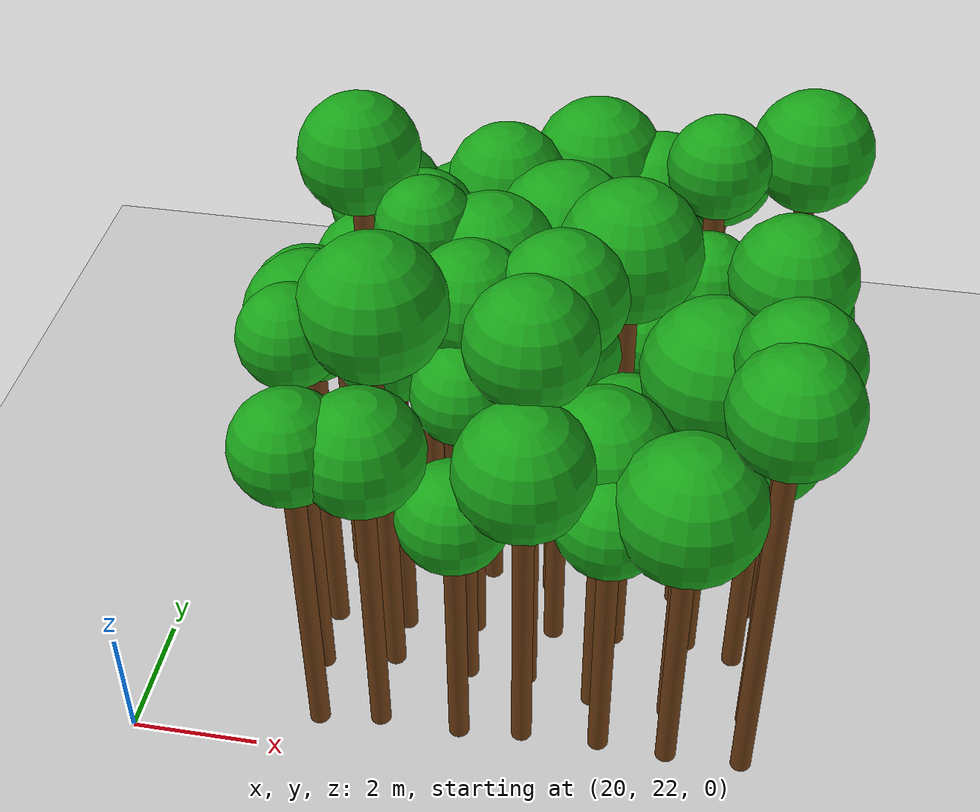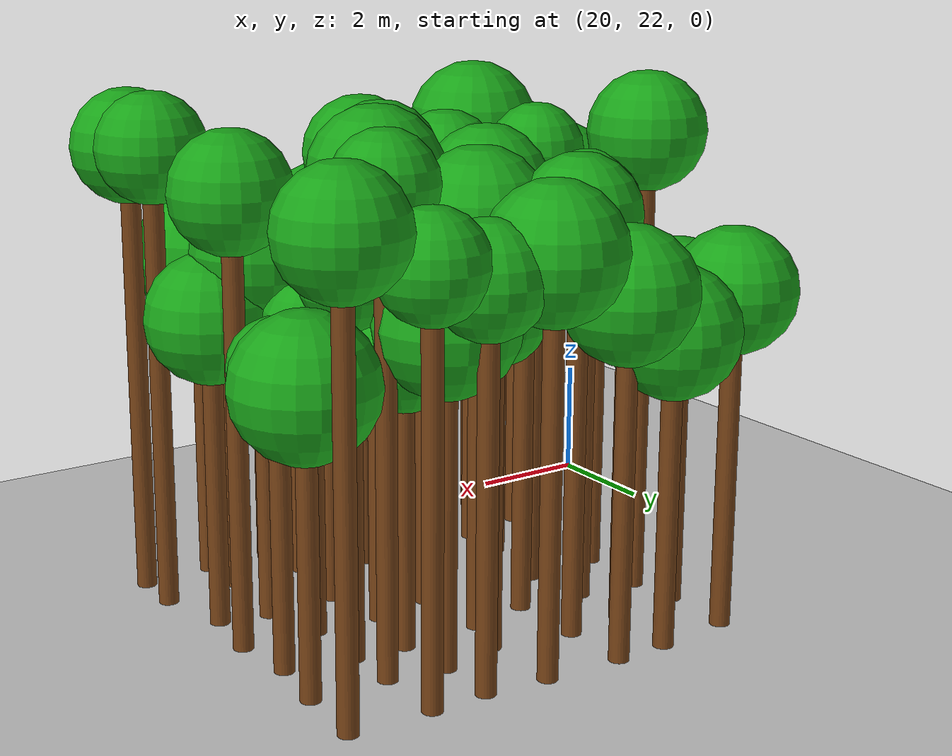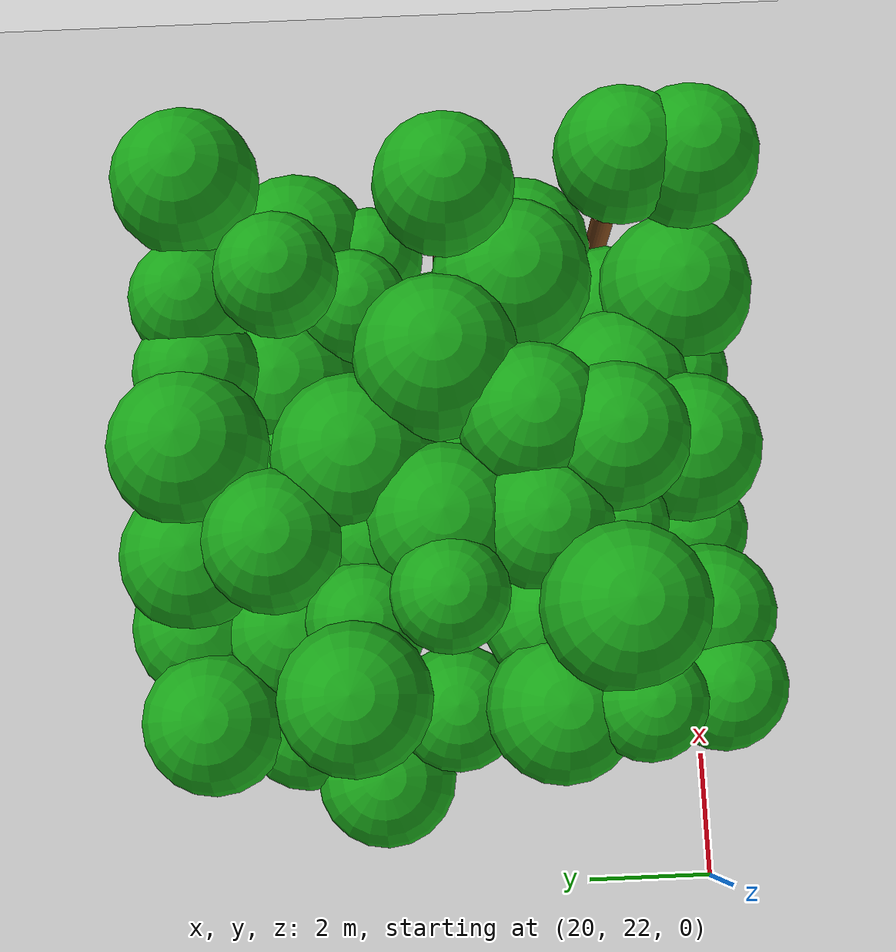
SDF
<sdf version="1.6">
 <world name="forest_world">
  <include><uri>model://sun</uri></include>
  <include><uri>model://ground_plane</uri></include>
  <model name="tree_2614_trunk">
   <static>true</static>
   <pose>21.87 27.13 2.11 0 0 0</pose>
   <link name="link">
    <collision name="collision">
     <geometry><cylinder><radius>0.16</radius><length>4.22</length></cylinder></geometry>
    </collision>
    <visual name="visual">
     <geometry><cylinder><radius>0.16</radius><length>4.22</length></cylinder></geometry>
     <material><ambient>0.35 0.20 0.05 1</ambient><diffuse>0.45 0.25 0.08 1</diffuse></material>
    </visual>
   </link>
  </model>
  <model name="tree_2614_leaf">
   <static>true</static>
   <pose>21.87 27.13 4.79 0 0 0</pose>
   <link name="link">
    <collision name="collision"><geometry><sphere><radius>0.94</radius></sphere></geometry></collision>
    <visual name="visual">
     <geometry><sphere><radius>0.94</radius></sphere></geometry>
     <material><ambient>0.05 0.45 0.05 1</ambient><diffuse>0.10 0.65 0.10 1</diffuse></material>
    </visual>
   </link>
  </model>
  <model name="tree_2665_trunk">
   <static>true</static>
   <pose>22.87 22.68 2.68 0 0 0</pose>
   <link name="link">
    <collision name="collision">
     <geometry><cylinder><radius>0.16</radius><length>5.36</length></cylinder></geometry>
    </collision>
    <visual name="visual">
     <geometry><cylinder><radius>0.16</radius><length>5.36</length></cylinder></geometry>
     <material><ambient>0.35 0.20 0.05 1</ambient><diffuse>0.45 0.25 0.08 1</diffuse></material>
    </visual>
   </link>
  </model>
  <model name="tree_2665_leaf">
   <static>true</static>
   <pose>22.87 22.68 5.87 0 0 0</pose>
   <link name="link">
    <collision name="collision"><geometry><sphere><radius>0.85</radius></sphere></geometry></collision>
    <visual name="visual">
     <geometry><sphere><radius>0.85</radius></sphere></geometry>
     <material><ambient>0.05 0.45 0.05 1</ambient><diffuse>0.10 0.65 0.10 1</diffuse></material>
    </visual>
   </link>
  </model>
  <model name="tree_2666_trunk">
   <static>true</static>
   <pose>22.67 23.80 3.22 0 0 0</pose>
   <link name="link">
    <collision name="collision">
     <geometry><cylinder><radius>0.16</radius><length>6.43</length></cylinder></geometry>
    </collision>
    <visual name="visual">
     <geometry><cylinder><radius>0.16</radius><length>6.43</length></cylinder></geometry>
     <material><ambient>0.35 0.20 0.05 1</ambient><diffuse>0.45 0.25 0.08 1</diffuse></material>
    </visual>
   </link>
  </model>
  <model name="tree_2666_leaf">
   <static>true</static>
   <pose>22.67 23.80 6.88 0 0 0</pose>
   <link name="link">
    <collision name="collision"><geometry><sphere><radius>0.75</radius></sphere></geometry></collision>
    <visual name="visual">
     <geometry><sphere><radius>0.75</radius></sphere></geometry>
     <material><ambient>0.05 0.45 0.05 1</ambient><diffuse>0.10 0.65 0.10 1</diffuse></material>
    </visual>
   </link>
  </model>
  <model name="tree_2667_trunk">
   <static>true</static>
   <pose>22.65 24.82 2.93 0 0 0</pose>
   <link name="link">
    <collision name="collision">
     <geometry><cylinder><radius>0.16</radius><length>5.86</length></cylinder></geometry>
    </collision>
    <visual name="visual">
     <geometry><cylinder><radius>0.16</radius><length>5.86</length></cylinder></geometry>
     <material><ambient>0.35 0.20 0.05 1</ambient><diffuse>0.45 0.25 0.08 1</diffuse></material>
    </visual>
   </link>
  </model>
  <model name="tree_2667_leaf">
   <static>true</static>
   <pose>22.65 24.82 6.44 0 0 0</pose>
   <link name="link">
    <collision name="collision"><geometry><sphere><radius>0.97</radius></sphere></geometry></collision>
    <visual name="visual">
     <geometry><sphere><radius>0.97</radius></sphere></geometry>
     <material><ambient>0.05 0.45 0.05 1</ambient><diffuse>0.10 0.65 0.10 1</diffuse></material>
    </visual>
   </link>
  </model>
  <model name="tree_2668_trunk">
   <static>true</static>
   <pose>22.74 26.13 2.57 0 0 0</pose>
   <link name="link">
    <collision name="collision">
     <geometry><cylinder><radius>0.16</radius><length>5.15</length></cylinder></geometry>
    </collision>
    <visual name="visual">
     <geometry><cylinder><radius>0.16</radius><length>5.15</length></cylinder></geometry>
     <material><ambient>0.35 0.20 0.05 1</ambient><diffuse>0.45 0.25 0.08 1</diffuse></material>
    </visual>
   </link>
  </model>
  <model name="tree_2668_leaf">
   <static>true</static>
   <pose>22.74 26.13 5.65 0 0 0</pose>
   <link name="link">
    <collision name="collision"><geometry><sphere><radius>0.84</radius></sphere></geometry></collision>
    <visual name="visual">
     <geometry><sphere><radius>0.84</radius></sphere></geometry>
     <material><ambient>0.05 0.45 0.05 1</ambient><diffuse>0.10 0.65 0.10 1</diffuse></material>
    </visual>
   </link>
  </model>
  <model name="tree_2669_trunk">
   <static>true</static>
   <pose>22.82 27.37 3.50 0 0 0</pose>
   <link name="link">
    <collision name="collision">
     <geometry><cylinder><radius>0.16</radius><length>6.99</length></cylinder></geometry>
    </collision>
    <visual name="visual">
     <geometry><cylinder><radius>0.16</radius><length>6.99</length></cylinder></geometry>
     <material><ambient>0.35 0.20 0.05 1</ambient><diffuse>0.45 0.25 0.08 1</diffuse></material>
    </visual>
   </link>
  </model>
  <model name="tree_2669_leaf">
   <static>true</static>
   <pose>22.82 27.37 7.56 0 0 0</pose>
   <link name="link">
    <collision name="collision"><geometry><sphere><radius>0.94</radius></sphere></geometry></collision>
    <visual name="visual">
     <geometry><sphere><radius>0.94</radius></sphere></geometry>
     <material><ambient>0.05 0.45 0.05 1</ambient><diffuse>0.10 0.65 0.10 1</diffuse></material>
    </visual>
   </link>
  </model>
  <model name="tree_2670_trunk">
   <static>true</static>
   <pose>22.68 28.16 2.15 0 0 0</pose>
   <link name="link">
    <collision name="collision">
     <geometry><cylinder><radius>0.16</radius><length>4.31</length></cylinder></geometry>
    </collision>
    <visual name="visual">
     <geometry><cylinder><radius>0.16</radius><length>4.31</length></cylinder></geometry>
     <material><ambient>0.35 0.20 0.05 1</ambient><diffuse>0.45 0.25 0.08 1</diffuse></material>
    </visual>
   </link>
  </model>
  <model name="tree_2670_leaf">
   <static>true</static>
   <pose>22.68 28.16 4.87 0 0 0</pose>
   <link name="link">
    <collision name="collision"><geometry><sphere><radius>0.94</radius></sphere></geometry></collision>
    <visual name="visual">
     <geometry><sphere><radius>0.94</radius></sphere></geometry>
     <material><ambient>0.05 0.45 0.05 1</ambient><diffuse>0.10 0.65 0.10 1</diffuse></material>
    </visual>
   </link>
  </model>
  <model name="tree_2671_trunk">
   <static>true</static>
   <pose>22.70 29.35 2.40 0 0 0</pose>
   <link name="link">
    <collision name="collision">
     <geometry><cylinder><radius>0.16</radius><length>4.81</length></cylinder></geometry>
    </collision>
    <visual name="visual">
     <geometry><cylinder><radius>0.16</radius><length>4.81</length></cylinder></geometry>
     <material><ambient>0.35 0.20 0.05 1</ambient><diffuse>0.45 0.25 0.08 1</diffuse></material>
    </visual>
   </link>
  </model>
  <model name="tree_2671_leaf">
   <static>true</static>
   <pose>22.70 29.35 5.40 0 0 0</pose>
   <link name="link">
    <collision name="collision"><geometry><sphere><radius>0.98</radius></sphere></geometry></collision>
    <visual name="visual">
     <geometry><sphere><radius>0.98</radius></sphere></geometry>
     <material><ambient>0.05 0.45 0.05 1</ambient><diffuse>0.10 0.65 0.10 1</diffuse></material>
    </visual>
   </link>
  </model>
  <model name="tree_2720_trunk">
   <static>true</static>
   <pose>23.83 22.82 2.62 0 0 0</pose>
   <link name="link">
    <collision name="collision">
     <geometry><cylinder><radius>0.16</radius><length>5.24</length></cylinder></geometry>
    </collision>
    <visual name="visual">
     <geometry><cylinder><radius>0.16</radius><length>5.24</length></cylinder></geometry>
     <material><ambient>0.35 0.20 0.05 1</ambient><diffuse>0.45 0.25 0.08 1</diffuse></material>
    </visual>
   </link>
  </model>
  <model name="tree_2720_leaf">
   <static>true</static>
   <pose>23.83 22.82 5.79 0 0 0</pose>
   <link name="link">
    <collision name="collision"><geometry><sphere><radius>0.93</radius></sphere></geometry></collision>
    <visual name="visual">
     <geometry><sphere><radius>0.93</radius></sphere></geometry>
     <material><ambient>0.05 0.45 0.05 1</ambient><diffuse>0.10 0.65 0.10 1</diffuse></material>
    </visual>
   </link>
  </model>
  <model name="tree_2721_trunk">
   <static>true</static>
   <pose>23.80 24.06 3.35 0 0 0</pose>
   <link name="link">
    <collision name="collision">
     <geometry><cylinder><radius>0.16</radius><length>6.70</length></cylinder></geometry>
    </collision>
    <visual name="visual">
     <geometry><cylinder><radius>0.16</radius><length>6.70</length></cylinder></geometry>
     <material><ambient>0.35 0.20 0.05 1</ambient><diffuse>0.45 0.25 0.08 1</diffuse></material>
    </visual>
   </link>
  </model>
  <model name="tree_2721_leaf">
   <static>true</static>
   <pose>23.80 24.06 7.33 0 0 0</pose>
   <link name="link">
    <collision name="collision"><geometry><sphere><radius>1.06</radius></sphere></geometry></collision>
    <visual name="visual">
     <geometry><sphere><radius>1.06</radius></sphere></geometry>
     <material><ambient>0.05 0.45 0.05 1</ambient><diffuse>0.10 0.65 0.10 1</diffuse></material>
    </visual>
   </link>
  </model>
  <model name="tree_2722_trunk">
   <static>true</static>
   <pose>23.83 24.85 2.79 0 0 0</pose>
   <link name="link">
    <collision name="collision">
     <geometry><cylinder><radius>0.16</radius><length>5.59</length></cylinder></geometry>
    </collision>
    <visual name="visual">
     <geometry><cylinder><radius>0.16</radius><length>5.59</length></cylinder></geometry>
     <material><ambient>0.35 0.20 0.05 1</ambient><diffuse>0.45 0.25 0.08 1</diffuse></material>
    </visual>
   </link>
  </model>
  <model name="tree_2722_leaf">
   <static>true</static>
   <pose>23.83 24.85 6.14 0 0 0</pose>
   <link name="link">
    <collision name="collision"><geometry><sphere><radius>0.93</radius></sphere></geometry></collision>
    <visual name="visual">
     <geometry><sphere><radius>0.93</radius></sphere></geometry>
     <material><ambient>0.05 0.45 0.05 1</ambient><diffuse>0.10 0.65 0.10 1</diffuse></material>
    </visual>
   </link>
  </model>
  <model name="tree_2723_trunk">
   <static>true</static>
   <pose>24.07 26.18 3.38 0 0 0</pose>
   <link name="link">
    <collision name="collision">
     <geometry><cylinder><radius>0.16</radius><length>6.76</length></cylinder></geometry>
    </collision>
    <visual name="visual">
     <geometry><cylinder><radius>0.16</radius><length>6.76</length></cylinder></geometry>
     <material><ambient>0.35 0.20 0.05 1</ambient><diffuse>0.45 0.25 0.08 1</diffuse></material>
    </visual>
   </link>
  </model>
  <model name="tree_2723_leaf">
   <static>true</static>
   <pose>24.07 26.18 7.21 0 0 0</pose>
   <link name="link">
    <collision name="collision"><geometry><sphere><radius>0.75</radius></sphere></geometry></collision>
    <visual name="visual">
     <geometry><sphere><radius>0.75</radius></sphere></geometry>
     <material><ambient>0.05 0.45 0.05 1</ambient><diffuse>0.10 0.65 0.10 1</diffuse></material>
    </visual>
   </link>
  </model>
  <model name="tree_2724_trunk">
   <static>true</static>
   <pose>23.84 27.24 3.04 0 0 0</pose>
   <link name="link">
    <collision name="collision">
     <geometry><cylinder><radius>0.16</radius><length>6.08</length></cylinder></geometry>
    </collision>
    <visual name="visual">
     <geometry><cylinder><radius>0.16</radius><length>6.08</length></cylinder></geometry>
     <material><ambient>0.35 0.20 0.05 1</ambient><diffuse>0.45 0.25 0.08 1</diffuse></material>
    </visual>
   </link>
  </model>
  <model name="tree_2724_leaf">
   <static>true</static>
   <pose>23.84 27.24 6.56 0 0 0</pose>
   <link name="link">
    <collision name="collision"><geometry><sphere><radius>0.79</radius></sphere></geometry></collision>
    <visual name="visual">
     <geometry><sphere><radius>0.79</radius></sphere></geometry>
     <material><ambient>0.05 0.45 0.05 1</ambient><diffuse>0.10 0.65 0.10 1</diffuse></material>
    </visual>
   </link>
  </model>
  <model name="tree_2725_trunk">
   <static>true</static>
   <pose>23.87 28.28 2.33 0 0 0</pose>
   <link name="link">
    <collision name="collision">
     <geometry><cylinder><radius>0.16</radius><length>4.66</length></cylinder></geometry>
    </collision>
    <visual name="visual">
     <geometry><cylinder><radius>0.16</radius><length>4.66</length></cylinder></geometry>
     <material><ambient>0.35 0.20 0.05 1</ambient><diffuse>0.45 0.25 0.08 1</diffuse></material>
    </visual>
   </link>
  </model>
  <model name="tree_2725_leaf">
   <static>true</static>
   <pose>23.87 28.28 5.26 0 0 0</pose>
   <link name="link">
    <collision name="collision"><geometry><sphere><radius>1.00</radius></sphere></geometry></collision>
    <visual name="visual">
     <geometry><sphere><radius>1.00</radius></sphere></geometry>
     <material><ambient>0.05 0.45 0.05 1</ambient><diffuse>0.10 0.65 0.10 1</diffuse></material>
    </visual>
   </link>
  </model>
  <model name="tree_2726_trunk">
   <static>true</static>
   <pose>24.00 29.51 2.19 0 0 0</pose>
   <link name="link">
    <collision name="collision">
     <geometry><cylinder><radius>0.16</radius><length>4.37</length></cylinder></geometry>
    </collision>
    <visual name="visual">
     <geometry><cylinder><radius>0.16</radius><length>4.37</length></cylinder></geometry>
     <material><ambient>0.35 0.20 0.05 1</ambient><diffuse>0.45 0.25 0.08 1</diffuse></material>
    </visual>
   </link>
  </model>
  <model name="tree_2726_leaf">
   <static>true</static>
   <pose>24.00 29.51 4.98 0 0 0</pose>
   <link name="link">
    <collision name="collision"><geometry><sphere><radius>1.02</radius></sphere></geometry></collision>
    <visual name="visual">
     <geometry><sphere><radius>1.02</radius></sphere></geometry>
     <material><ambient>0.05 0.45 0.05 1</ambient><diffuse>0.10 0.65 0.10 1</diffuse></material>
    </visual>
   </link>
  </model>
  <model name="tree_2775_trunk">
   <static>true</static>
   <pose>25.10 22.80 2.14 0 0 0</pose>
   <link name="link">
    <collision name="collision">
     <geometry><cylinder><radius>0.16</radius><length>4.29</length></cylinder></geometry>
    </collision>
    <visual name="visual">
     <geometry><cylinder><radius>0.16</radius><length>4.29</length></cylinder></geometry>
     <material><ambient>0.35 0.20 0.05 1</ambient><diffuse>0.45 0.25 0.08 1</diffuse></material>
    </visual>
   </link>
  </model>
  <model name="tree_2775_leaf">
   <static>true</static>
   <pose>25.10 22.80 4.79 0 0 0</pose>
   <link name="link">
    <collision name="collision"><geometry><sphere><radius>0.83</radius></sphere></geometry></collision>
    <visual name="visual">
     <geometry><sphere><radius>0.83</radius></sphere></geometry>
     <material><ambient>0.05 0.45 0.05 1</ambient><diffuse>0.10 0.65 0.10 1</diffuse></material>
    </visual>
   </link>
  </model>
  <model name="tree_2776_trunk">
   <static>true</static>
   <pose>25.03 24.00 2.78 0 0 0</pose>
   <link name="link">
    <collision name="collision">
     <geometry><cylinder><radius>0.16</radius><length>5.57</length></cylinder></geometry>
    </collision>
    <visual name="visual">
     <geometry><cylinder><radius>0.16</radius><length>5.57</length></cylinder></geometry>
     <material><ambient>0.35 0.20 0.05 1</ambient><diffuse>0.45 0.25 0.08 1</diffuse></material>
    </visual>
   </link>
  </model>
  <model name="tree_2776_leaf">
   <static>true</static>
   <pose>25.03 24.00 6.02 0 0 0</pose>
   <link name="link">
    <collision name="collision"><geometry><sphere><radius>0.75</radius></sphere></geometry></collision>
    <visual name="visual">
     <geometry><sphere><radius>0.75</radius></sphere></geometry>
     <material><ambient>0.05 0.45 0.05 1</ambient><diffuse>0.10 0.65 0.10 1</diffuse></material>
    </visual>
   </link>
  </model>
  <model name="tree_2777_trunk">
   <static>true</static>
   <pose>24.97 24.97 3.17 0 0 0</pose>
   <link name="link">
    <collision name="collision">
     <geometry><cylinder><radius>0.16</radius><length>6.34</length></cylinder></geometry>
    </collision>
    <visual name="visual">
     <geometry><cylinder><radius>0.16</radius><length>6.34</length></cylinder></geometry>
     <material><ambient>0.35 0.20 0.05 1</ambient><diffuse>0.45 0.25 0.08 1</diffuse></material>
    </visual>
   </link>
  </model>
  <model name="tree_2777_leaf">
   <static>true</static>
   <pose>24.97 24.97 6.88 0 0 0</pose>
   <link name="link">
    <collision name="collision"><geometry><sphere><radius>0.90</radius></sphere></geometry></collision>
    <visual name="visual">
     <geometry><sphere><radius>0.90</radius></sphere></geometry>
     <material><ambient>0.05 0.45 0.05 1</ambient><diffuse>0.10 0.65 0.10 1</diffuse></material>
    </visual>
   </link>
  </model>
  <model name="tree_2778_trunk">
   <static>true</static>
   <pose>25.04 26.22 3.04 0 0 0</pose>
   <link name="link">
    <collision name="collision">
     <geometry><cylinder><radius>0.16</radius><length>6.07</length></cylinder></geometry>
    </collision>
    <visual name="visual">
     <geometry><cylinder><radius>0.16</radius><length>6.07</length></cylinder></geometry>
     <material><ambient>0.35 0.20 0.05 1</ambient><diffuse>0.45 0.25 0.08 1</diffuse></material>
    </visual>
   </link>
  </model>
  <model name="tree_2778_leaf">
   <static>true</static>
   <pose>25.04 26.22 6.69 0 0 0</pose>
   <link name="link">
    <collision name="collision"><geometry><sphere><radius>1.03</radius></sphere></geometry></collision>
    <visual name="visual">
     <geometry><sphere><radius>1.03</radius></sphere></geometry>
     <material><ambient>0.05 0.45 0.05 1</ambient><diffuse>0.10 0.65 0.10 1</diffuse></material>
    </visual>
   </link>
  </model>
  <model name="tree_2779_trunk">
   <static>true</static>
   <pose>24.95 27.12 2.86 0 0 0</pose>
   <link name="link">
    <collision name="collision">
     <geometry><cylinder><radius>0.16</radius><length>5.71</length></cylinder></geometry>
    </collision>
    <visual name="visual">
     <geometry><cylinder><radius>0.16</radius><length>5.71</length></cylinder></geometry>
     <material><ambient>0.35 0.20 0.05 1</ambient><diffuse>0.45 0.25 0.08 1</diffuse></material>
    </visual>
   </link>
  </model>
  <model name="tree_2779_leaf">
   <static>true</static>
   <pose>24.95 27.12 6.22 0 0 0</pose>
   <link name="link">
    <collision name="collision"><geometry><sphere><radius>0.84</radius></sphere></geometry></collision>
    <visual name="visual">
     <geometry><sphere><radius>0.84</radius></sphere></geometry>
     <material><ambient>0.05 0.45 0.05 1</ambient><diffuse>0.10 0.65 0.10 1</diffuse></material>
    </visual>
   </link>
  </model>
  <model name="tree_2780_trunk">
   <static>true</static>
   <pose>24.90 28.38 3.03 0 0 0</pose>
   <link name="link">
    <collision name="collision">
     <geometry><cylinder><radius>0.16</radius><length>6.05</length></cylinder></geometry>
    </collision>
    <visual name="visual">
     <geometry><cylinder><radius>0.16</radius><length>6.05</length></cylinder></geometry>
     <material><ambient>0.35 0.20 0.05 1</ambient><diffuse>0.45 0.25 0.08 1</diffuse></material>
    </visual>
   </link>
  </model>
  <model name="tree_2780_leaf">
   <static>true</static>
   <pose>24.90 28.38 6.62 0 0 0</pose>
   <link name="link">
    <collision name="collision"><geometry><sphere><radius>0.94</radius></sphere></geometry></collision>
    <visual name="visual">
     <geometry><sphere><radius>0.94</radius></sphere></geometry>
     <material><ambient>0.05 0.45 0.05 1</ambient><diffuse>0.10 0.65 0.10 1</diffuse></material>
    </visual>
   </link>
  </model>
  <model name="tree_2781_trunk">
   <static>true</static>
   <pose>24.88 29.52 2.51 0 0 0</pose>
   <link name="link">
    <collision name="collision">
     <geometry><cylinder><radius>0.16</radius><length>5.03</length></cylinder></geometry>
    </collision>
    <visual name="visual">
     <geometry><cylinder><radius>0.16</radius><length>5.03</length></cylinder></geometry>
     <material><ambient>0.35 0.20 0.05 1</ambient><diffuse>0.45 0.25 0.08 1</diffuse></material>
    </visual>
   </link>
  </model>
  <model name="tree_2781_leaf">
   <static>true</static>
   <pose>24.88 29.52 5.65 0 0 0</pose>
   <link name="link">
    <collision name="collision"><geometry><sphere><radius>1.04</radius></sphere></geometry></collision>
    <visual name="visual">
     <geometry><sphere><radius>1.04</radius></sphere></geometry>
     <material><ambient>0.05 0.45 0.05 1</ambient><diffuse>0.10 0.65 0.10 1</diffuse></material>
    </visual>
   </link>
  </model>
  <model name="tree_2830_trunk">
   <static>true</static>
   <pose>26.08 22.90 2.56 0 0 0</pose>
   <link name="link">
    <collision name="collision">
     <geometry><cylinder><radius>0.16</radius><length>5.13</length></cylinder></geometry>
    </collision>
    <visual name="visual">
     <geometry><cylinder><radius>0.16</radius><length>5.13</length></cylinder></geometry>
     <material><ambient>0.35 0.20 0.05 1</ambient><diffuse>0.45 0.25 0.08 1</diffuse></material>
    </visual>
   </link>
  </model>
  <model name="tree_2830_leaf">
   <static>true</static>
   <pose>26.08 22.90 5.73 0 0 0</pose>
   <link name="link">
    <collision name="collision"><geometry><sphere><radius>1.01</radius></sphere></geometry></collision>
    <visual name="visual">
     <geometry><sphere><radius>1.01</radius></sphere></geometry>
     <material><ambient>0.05 0.45 0.05 1</ambient><diffuse>0.10 0.65 0.10 1</diffuse></material>
    </visual>
   </link>
  </model>
  <model name="tree_2831_trunk">
   <static>true</static>
   <pose>25.98 24.02 3.23 0 0 0</pose>
   <link name="link">
    <collision name="collision">
     <geometry><cylinder><radius>0.16</radius><length>6.47</length></cylinder></geometry>
    </collision>
    <visual name="visual">
     <geometry><cylinder><radius>0.16</radius><length>6.47</length></cylinder></geometry>
     <material><ambient>0.35 0.20 0.05 1</ambient><diffuse>0.45 0.25 0.08 1</diffuse></material>
    </visual>
   </link>
  </model>
  <model name="tree_2831_leaf">
   <static>true</static>
   <pose>25.98 24.02 7.04 0 0 0</pose>
   <link name="link">
    <collision name="collision"><geometry><sphere><radius>0.95</radius></sphere></geometry></collision>
    <visual name="visual">
     <geometry><sphere><radius>0.95</radius></sphere></geometry>
     <material><ambient>0.05 0.45 0.05 1</ambient><diffuse>0.10 0.65 0.10 1</diffuse></material>
    </visual>
   </link>
  </model>
  <model name="tree_2832_trunk">
   <static>true</static>
   <pose>26.26 25.06 3.26 0 0 0</pose>
   <link name="link">
    <collision name="collision">
     <geometry><cylinder><radius>0.16</radius><length>6.52</length></cylinder></geometry>
    </collision>
    <visual name="visual">
     <geometry><cylinder><radius>0.16</radius><length>6.52</length></cylinder></geometry>
     <material><ambient>0.35 0.20 0.05 1</ambient><diffuse>0.45 0.25 0.08 1</diffuse></material>
    </visual>
   </link>
  </model>
  <model name="tree_2832_leaf">
   <static>true</static>
   <pose>26.26 25.06 7.09 0 0 0</pose>
   <link name="link">
    <collision name="collision"><geometry><sphere><radius>0.95</radius></sphere></geometry></collision>
    <visual name="visual">
     <geometry><sphere><radius>0.95</radius></sphere></geometry>
     <material><ambient>0.05 0.45 0.05 1</ambient><diffuse>0.10 0.65 0.10 1</diffuse></material>
    </visual>
   </link>
  </model>
  <model name="tree_2833_trunk">
   <static>true</static>
   <pose>26.09 26.06 2.35 0 0 0</pose>
   <link name="link">
    <collision name="collision">
     <geometry><cylinder><radius>0.16</radius><length>4.69</length></cylinder></geometry>
    </collision>
    <visual name="visual">
     <geometry><cylinder><radius>0.16</radius><length>4.69</length></cylinder></geometry>
     <material><ambient>0.35 0.20 0.05 1</ambient><diffuse>0.45 0.25 0.08 1</diffuse></material>
    </visual>
   </link>
  </model>
  <model name="tree_2833_leaf">
   <static>true</static>
   <pose>26.09 26.06 5.27 0 0 0</pose>
   <link name="link">
    <collision name="collision"><geometry><sphere><radius>0.96</radius></sphere></geometry></collision>
    <visual name="visual">
     <geometry><sphere><radius>0.96</radius></sphere></geometry>
     <material><ambient>0.05 0.45 0.05 1</ambient><diffuse>0.10 0.65 0.10 1</diffuse></material>
    </visual>
   </link>
  </model>
  <model name="tree_2834_trunk">
   <static>true</static>
   <pose>25.97 27.34 2.94 0 0 0</pose>
   <link name="link">
    <collision name="collision">
     <geometry><cylinder><radius>0.16</radius><length>5.88</length></cylinder></geometry>
    </collision>
    <visual name="visual">
     <geometry><cylinder><radius>0.16</radius><length>5.88</length></cylinder></geometry>
     <material><ambient>0.35 0.20 0.05 1</ambient><diffuse>0.45 0.25 0.08 1</diffuse></material>
    </visual>
   </link>
  </model>
  <model name="tree_2834_leaf">
   <static>true</static>
   <pose>25.97 27.34 6.53 0 0 0</pose>
   <link name="link">
    <collision name="collision"><geometry><sphere><radius>1.09</radius></sphere></geometry></collision>
    <visual name="visual">
     <geometry><sphere><radius>1.09</radius></sphere></geometry>
     <material><ambient>0.05 0.45 0.05 1</ambient><diffuse>0.10 0.65 0.10 1</diffuse></material>
    </visual>
   </link>
  </model>
  <model name="tree_2835_trunk">
   <static>true</static>
   <pose>26.25 28.13 2.41 0 0 0</pose>
   <link name="link">
    <collision name="collision">
     <geometry><cylinder><radius>0.16</radius><length>4.81</length></cylinder></geometry>
    </collision>
    <visual name="visual">
     <geometry><cylinder><radius>0.16</radius><length>4.81</length></cylinder></geometry>
     <material><ambient>0.35 0.20 0.05 1</ambient><diffuse>0.45 0.25 0.08 1</diffuse></material>
    </visual>
   </link>
  </model>
  <model name="tree_2835_leaf">
   <static>true</static>
   <pose>26.25 28.13 5.31 0 0 0</pose>
   <link name="link">
    <collision name="collision"><geometry><sphere><radius>0.83</radius></sphere></geometry></collision>
    <visual name="visual">
     <geometry><sphere><radius>0.83</radius></sphere></geometry>
     <material><ambient>0.05 0.45 0.05 1</ambient><diffuse>0.10 0.65 0.10 1</diffuse></material>
    </visual>
   </link>
  </model>
  <model name="tree_2836_trunk">
   <static>true</static>
   <pose>26.20 29.49 2.89 0 0 0</pose>
   <link name="link">
    <collision name="collision">
     <geometry><cylinder><radius>0.16</radius><length>5.77</length></cylinder></geometry>
    </collision>
    <visual name="visual">
     <geometry><cylinder><radius>0.16</radius><length>5.77</length></cylinder></geometry>
     <material><ambient>0.35 0.20 0.05 1</ambient><diffuse>0.45 0.25 0.08 1</diffuse></material>
    </visual>
   </link>
  </model>
  <model name="tree_2836_leaf">
   <static>true</static>
   <pose>26.20 29.49 6.41 0 0 0</pose>
   <link name="link">
    <collision name="collision"><geometry><sphere><radius>1.06</radius></sphere></geometry></collision>
    <visual name="visual">
     <geometry><sphere><radius>1.06</radius></sphere></geometry>
     <material><ambient>0.05 0.45 0.05 1</ambient><diffuse>0.10 0.65 0.10 1</diffuse></material>
    </visual>
   </link>
  </model>
  <model name="tree_2885_trunk">
   <static>true</static>
   <pose>27.29 22.93 2.23 0 0 0</pose>
   <link name="link">
    <collision name="collision">
     <geometry><cylinder><radius>0.16</radius><length>4.46</length></cylinder></geometry>
    </collision>
    <visual name="visual">
     <geometry><cylinder><radius>0.16</radius><length>4.46</length></cylinder></geometry>
     <material><ambient>0.35 0.20 0.05 1</ambient><diffuse>0.45 0.25 0.08 1</diffuse></material>
    </visual>
   </link>
  </model>
  <model name="tree_2885_leaf">
   <static>true</static>
   <pose>27.29 22.93 4.95 0 0 0</pose>
   <link name="link">
    <collision name="collision"><geometry><sphere><radius>0.82</radius></sphere></geometry></collision>
    <visual name="visual">
     <geometry><sphere><radius>0.82</radius></sphere></geometry>
     <material><ambient>0.05 0.45 0.05 1</ambient><diffuse>0.10 0.65 0.10 1</diffuse></material>
    </visual>
   </link>
  </model>
  <model name="tree_2886_trunk">
   <static>true</static>
   <pose>27.07 23.77 2.32 0 0 0</pose>
   <link name="link">
    <collision name="collision">
     <geometry><cylinder><radius>0.16</radius><length>4.65</length></cylinder></geometry>
    </collision>
    <visual name="visual">
     <geometry><cylinder><radius>0.16</radius><length>4.65</length></cylinder></geometry>
     <material><ambient>0.35 0.20 0.05 1</ambient><diffuse>0.45 0.25 0.08 1</diffuse></material>
    </visual>
   </link>
  </model>
  <model name="tree_2886_leaf">
   <static>true</static>
   <pose>27.07 23.77 5.29 0 0 0</pose>
   <link name="link">
    <collision name="collision"><geometry><sphere><radius>1.07</radius></sphere></geometry></collision>
    <visual name="visual">
     <geometry><sphere><radius>1.07</radius></sphere></geometry>
     <material><ambient>0.05 0.45 0.05 1</ambient><diffuse>0.10 0.65 0.10 1</diffuse></material>
    </visual>
   </link>
  </model>
  <model name="tree_2887_trunk">
   <static>true</static>
   <pose>27.27 25.10 2.01 0 0 0</pose>
   <link name="link">
    <collision name="collision">
     <geometry><cylinder><radius>0.16</radius><length>4.02</length></cylinder></geometry>
    </collision>
    <visual name="visual">
     <geometry><cylinder><radius>0.16</radius><length>4.02</length></cylinder></geometry>
     <material><ambient>0.35 0.20 0.05 1</ambient><diffuse>0.45 0.25 0.08 1</diffuse></material>
    </visual>
   </link>
  </model>
  <model name="tree_2887_leaf">
   <static>true</static>
   <pose>27.27 25.10 4.58 0 0 0</pose>
   <link name="link">
    <collision name="collision"><geometry><sphere><radius>0.94</radius></sphere></geometry></collision>
    <visual name="visual">
     <geometry><sphere><radius>0.94</radius></sphere></geometry>
     <material><ambient>0.05 0.45 0.05 1</ambient><diffuse>0.10 0.65 0.10 1</diffuse></material>
    </visual>
   </link>
  </model>
  <model name="tree_2888_trunk">
   <static>true</static>
   <pose>27.07 26.23 3.24 0 0 0</pose>
   <link name="link">
    <collision name="collision">
     <geometry><cylinder><radius>0.16</radius><length>6.48</length></cylinder></geometry>
    </collision>
    <visual name="visual">
     <geometry><cylinder><radius>0.16</radius><length>6.48</length></cylinder></geometry>
     <material><ambient>0.35 0.20 0.05 1</ambient><diffuse>0.45 0.25 0.08 1</diffuse></material>
    </visual>
   </link>
  </model>
  <model name="tree_2888_leaf">
   <static>true</static>
   <pose>27.07 26.23 7.12 0 0 0</pose>
   <link name="link">
    <collision name="collision"><geometry><sphere><radius>1.06</radius></sphere></geometry></collision>
    <visual name="visual">
     <geometry><sphere><radius>1.06</radius></sphere></geometry>
     <material><ambient>0.05 0.45 0.05 1</ambient><diffuse>0.10 0.65 0.10 1</diffuse></material>
    </visual>
   </link>
  </model>
  <model name="tree_2889_trunk">
   <static>true</static>
   <pose>27.33 27.38 2.09 0 0 0</pose>
   <link name="link">
    <collision name="collision">
     <geometry><cylinder><radius>0.16</radius><length>4.17</length></cylinder></geometry>
    </collision>
    <visual name="visual">
     <geometry><cylinder><radius>0.16</radius><length>4.17</length></cylinder></geometry>
     <material><ambient>0.35 0.20 0.05 1</ambient><diffuse>0.45 0.25 0.08 1</diffuse></material>
    </visual>
   </link>
  </model>
  <model name="tree_2889_leaf">
   <static>true</static>
   <pose>27.33 27.38 4.74 0 0 0</pose>
   <link name="link">
    <collision name="collision"><geometry><sphere><radius>0.95</radius></sphere></geometry></collision>
    <visual name="visual">
     <geometry><sphere><radius>0.95</radius></sphere></geometry>
     <material><ambient>0.05 0.45 0.05 1</ambient><diffuse>0.10 0.65 0.10 1</diffuse></material>
    </visual>
   </link>
  </model>
  <model name="tree_2890_trunk">
   <static>true</static>
   <pose>27.23 28.36 2.32 0 0 0</pose>
   <link name="link">
    <collision name="collision">
     <geometry><cylinder><radius>0.16</radius><length>4.65</length></cylinder></geometry>
    </collision>
    <visual name="visual">
     <geometry><cylinder><radius>0.16</radius><length>4.65</length></cylinder></geometry>
     <material><ambient>0.35 0.20 0.05 1</ambient><diffuse>0.45 0.25 0.08 1</diffuse></material>
    </visual>
   </link>
  </model>
  <model name="tree_2890_leaf">
   <static>true</static>
   <pose>27.23 28.36 5.31 0 0 0</pose>
   <link name="link">
    <collision name="collision"><geometry><sphere><radius>1.10</radius></sphere></geometry></collision>
    <visual name="visual">
     <geometry><sphere><radius>1.10</radius></sphere></geometry>
     <material><ambient>0.05 0.45 0.05 1</ambient><diffuse>0.10 0.65 0.10 1</diffuse></material>
    </visual>
   </link>
  </model>
  <model name="tree_2891_trunk">
   <static>true</static>
   <pose>27.24 29.39 2.82 0 0 0</pose>
   <link name="link">
    <collision name="collision">
     <geometry><cylinder><radius>0.16</radius><length>5.63</length></cylinder></geometry>
    </collision>
    <visual name="visual">
     <geometry><cylinder><radius>0.16</radius><length>5.63</length></cylinder></geometry>
     <material><ambient>0.35 0.20 0.05 1</ambient><diffuse>0.45 0.25 0.08 1</diffuse></material>
    </visual>
   </link>
  </model>
  <model name="tree_2891_leaf">
   <static>true</static>
   <pose>27.24 29.39 6.15 0 0 0</pose>
   <link name="link">
    <collision name="collision"><geometry><sphere><radius>0.87</radius></sphere></geometry></collision>
    <visual name="visual">
     <geometry><sphere><radius>0.87</radius></sphere></geometry>
     <material><ambient>0.05 0.45 0.05 1</ambient><diffuse>0.10 0.65 0.10 1</diffuse></material>
    </visual>
   </link>
  </model>
  <model name="tree_2940_trunk">
   <static>true</static>
   <pose>28.36 22.88 2.39 0 0 0</pose>
   <link name="link">
    <collision name="collision">
     <geometry><cylinder><radius>0.16</radius><length>4.77</length></cylinder></geometry>
    </collision>
    <visual name="visual">
     <geometry><cylinder><radius>0.16</radius><length>4.77</length></cylinder></geometry>
     <material><ambient>0.35 0.20 0.05 1</ambient><diffuse>0.45 0.25 0.08 1</diffuse></material>
    </visual>
   </link>
  </model>
  <model name="tree_2940_leaf">
   <static>true</static>
   <pose>28.36 22.88 5.42 0 0 0</pose>
   <link name="link">
    <collision name="collision"><geometry><sphere><radius>1.08</radius></sphere></geometry></collision>
    <visual name="visual">
     <geometry><sphere><radius>1.08</radius></sphere></geometry>
     <material><ambient>0.05 0.45 0.05 1</ambient><diffuse>0.10 0.65 0.10 1</diffuse></material>
    </visual>
   </link>
  </model>
  <model name="tree_2941_trunk">
   <static>true</static>
   <pose>28.30 23.72 2.00 0 0 0</pose>
   <link name="link">
    <collision name="collision">
     <geometry><cylinder><radius>0.16</radius><length>4.00</length></cylinder></geometry>
    </collision>
    <visual name="visual">
     <geometry><cylinder><radius>0.16</radius><length>4.00</length></cylinder></geometry>
     <material><ambient>0.35 0.20 0.05 1</ambient><diffuse>0.45 0.25 0.08 1</diffuse></material>
    </visual>
   </link>
  </model>
  <model name="tree_2941_leaf">
   <static>true</static>
   <pose>28.30 23.72 4.61 0 0 0</pose>
   <link name="link">
    <collision name="collision"><geometry><sphere><radius>1.01</radius></sphere></geometry></collision>
    <visual name="visual">
     <geometry><sphere><radius>1.01</radius></sphere></geometry>
     <material><ambient>0.05 0.45 0.05 1</ambient><diffuse>0.10 0.65 0.10 1</diffuse></material>
    </visual>
   </link>
  </model>
  <model name="tree_2942_trunk">
   <static>true</static>
   <pose>28.46 25.16 2.66 0 0 0</pose>
   <link name="link">
    <collision name="collision">
     <geometry><cylinder><radius>0.16</radius><length>5.31</length></cylinder></geometry>
    </collision>
    <visual name="visual">
     <geometry><cylinder><radius>0.16</radius><length>5.31</length></cylinder></geometry>
     <material><ambient>0.35 0.20 0.05 1</ambient><diffuse>0.45 0.25 0.08 1</diffuse></material>
    </visual>
   </link>
  </model>
  <model name="tree_2942_leaf">
   <static>true</static>
   <pose>28.46 25.16 5.96 0 0 0</pose>
   <link name="link">
    <collision name="collision"><geometry><sphere><radius>1.09</radius></sphere></geometry></collision>
    <visual name="visual">
     <geometry><sphere><radius>1.09</radius></sphere></geometry>
     <material><ambient>0.05 0.45 0.05 1</ambient><diffuse>0.10 0.65 0.10 1</diffuse></material>
    </visual>
   </link>
  </model>
  <model name="tree_2943_trunk">
   <static>true</static>
   <pose>28.18 26.16 2.27 0 0 0</pose>
   <link name="link">
    <collision name="collision">
     <geometry><cylinder><radius>0.16</radius><length>4.53</length></cylinder></geometry>
    </collision>
    <visual name="visual">
     <geometry><cylinder><radius>0.16</radius><length>4.53</length></cylinder></geometry>
     <material><ambient>0.35 0.20 0.05 1</ambient><diffuse>0.45 0.25 0.08 1</diffuse></material>
    </visual>
   </link>
  </model>
  <model name="tree_2943_leaf">
   <static>true</static>
   <pose>28.18 26.16 4.98 0 0 0</pose>
   <link name="link">
    <collision name="collision"><geometry><sphere><radius>0.75</radius></sphere></geometry></collision>
    <visual name="visual">
     <geometry><sphere><radius>0.75</radius></sphere></geometry>
     <material><ambient>0.05 0.45 0.05 1</ambient><diffuse>0.10 0.65 0.10 1</diffuse></material>
    </visual>
   </link>
  </model>
  <model name="tree_2944_trunk">
   <static>true</static>
   <pose>28.19 27.31 2.72 0 0 0</pose>
   <link name="link">
    <collision name="collision">
     <geometry><cylinder><radius>0.16</radius><length>5.44</length></cylinder></geometry>
    </collision>
    <visual name="visual">
     <geometry><cylinder><radius>0.16</radius><length>5.44</length></cylinder></geometry>
     <material><ambient>0.35 0.20 0.05 1</ambient><diffuse>0.45 0.25 0.08 1</diffuse></material>
    </visual>
   </link>
  </model>
  <model name="tree_2944_leaf">
   <static>true</static>
   <pose>28.19 27.31 5.90 0 0 0</pose>
   <link name="link">
    <collision name="collision"><geometry><sphere><radius>0.77</radius></sphere></geometry></collision>
    <visual name="visual">
     <geometry><sphere><radius>0.77</radius></sphere></geometry>
     <material><ambient>0.05 0.45 0.05 1</ambient><diffuse>0.10 0.65 0.10 1</diffuse></material>
    </visual>
   </link>
  </model>
  <model name="tree_2945_trunk">
   <static>true</static>
   <pose>28.16 28.20 3.45 0 0 0</pose>
   <link name="link">
    <collision name="collision">
     <geometry><cylinder><radius>0.16</radius><length>6.91</length></cylinder></geometry>
    </collision>
    <visual name="visual">
     <geometry><cylinder><radius>0.16</radius><length>6.91</length></cylinder></geometry>
     <material><ambient>0.35 0.20 0.05 1</ambient><diffuse>0.45 0.25 0.08 1</diffuse></material>
    </visual>
   </link>
  </model>
  <model name="tree_2945_leaf">
   <static>true</static>
   <pose>28.16 28.20 7.38 0 0 0</pose>
   <link name="link">
    <collision name="collision"><geometry><sphere><radius>0.79</radius></sphere></geometry></collision>
    <visual name="visual">
     <geometry><sphere><radius>0.79</radius></sphere></geometry>
     <material><ambient>0.05 0.45 0.05 1</ambient><diffuse>0.10 0.65 0.10 1</diffuse></material>
    </visual>
   </link>
  </model>
  <model name="tree_2946_trunk">
   <static>true</static>
   <pose>28.18 29.41 2.98 0 0 0</pose>
   <link name="link">
    <collision name="collision">
     <geometry><cylinder><radius>0.16</radius><length>5.96</length></cylinder></geometry>
    </collision>
    <visual name="visual">
     <geometry><cylinder><radius>0.16</radius><length>5.96</length></cylinder></geometry>
     <material><ambient>0.35 0.20 0.05 1</ambient><diffuse>0.45 0.25 0.08 1</diffuse></material>
    </visual>
   </link>
  </model>
  <model name="tree_2946_leaf">
   <static>true</static>
   <pose>28.18 29.41 6.46 0 0 0</pose>
   <link name="link">
    <collision name="collision"><geometry><sphere><radius>0.83</radius></sphere></geometry></collision>
    <visual name="visual">
     <geometry><sphere><radius>0.83</radius></sphere></geometry>
     <material><ambient>0.05 0.45 0.05 1</ambient><diffuse>0.10 0.65 0.10 1</diffuse></material>
    </visual>
   </link>
  </model>
  <model name="tree_2995_trunk">
   <static>true</static>
   <pose>29.53 22.91 3.39 0 0 0</pose>
   <link name="link">
    <collision name="collision">
     <geometry><cylinder><radius>0.16</radius><length>6.79</length></cylinder></geometry>
    </collision>
    <visual name="visual">
     <geometry><cylinder><radius>0.16</radius><length>6.79</length></cylinder></geometry>
     <material><ambient>0.35 0.20 0.05 1</ambient><diffuse>0.45 0.25 0.08 1</diffuse></material>
    </visual>
   </link>
  </model>
  <model name="tree_2995_leaf">
   <static>true</static>
   <pose>29.53 22.91 7.33 0 0 0</pose>
   <link name="link">
    <collision name="collision"><geometry><sphere><radius>0.91</radius></sphere></geometry></collision>
    <visual name="visual">
     <geometry><sphere><radius>0.91</radius></sphere></geometry>
     <material><ambient>0.05 0.45 0.05 1</ambient><diffuse>0.10 0.65 0.10 1</diffuse></material>
    </visual>
   </link>
  </model>
  <model name="tree_2996_trunk">
   <static>true</static>
   <pose>29.55 23.77 3.44 0 0 0</pose>
   <link name="link">
    <collision name="collision">
     <geometry><cylinder><radius>0.16</radius><length>6.89</length></cylinder></geometry>
    </collision>
    <visual name="visual">
     <geometry><cylinder><radius>0.16</radius><length>6.89</length></cylinder></geometry>
     <material><ambient>0.35 0.20 0.05 1</ambient><diffuse>0.45 0.25 0.08 1</diffuse></material>
    </visual>
   </link>
  </model>
  <model name="tree_2996_leaf">
   <static>true</static>
   <pose>29.55 23.77 7.41 0 0 0</pose>
   <link name="link">
    <collision name="collision"><geometry><sphere><radius>0.87</radius></sphere></geometry></collision>
    <visual name="visual">
     <geometry><sphere><radius>0.87</radius></sphere></geometry>
     <material><ambient>0.05 0.45 0.05 1</ambient><diffuse>0.10 0.65 0.10 1</diffuse></material>
    </visual>
   </link>
  </model>
  <model name="tree_2997_trunk">
   <static>true</static>
   <pose>29.24 24.97 2.17 0 0 0</pose>
   <link name="link">
    <collision name="collision">
     <geometry><cylinder><radius>0.16</radius><length>4.35</length></cylinder></geometry>
    </collision>
    <visual name="visual">
     <geometry><cylinder><radius>0.16</radius><length>4.35</length></cylinder></geometry>
     <material><ambient>0.35 0.20 0.05 1</ambient><diffuse>0.45 0.25 0.08 1</diffuse></material>
    </visual>
   </link>
  </model>
  <model name="tree_2997_leaf">
   <static>true</static>
   <pose>29.24 24.97 4.96 0 0 0</pose>
   <link name="link">
    <collision name="collision"><geometry><sphere><radius>1.02</radius></sphere></geometry></collision>
    <visual name="visual">
     <geometry><sphere><radius>1.02</radius></sphere></geometry>
     <material><ambient>0.05 0.45 0.05 1</ambient><diffuse>0.10 0.65 0.10 1</diffuse></material>
    </visual>
   </link>
  </model>
  <model name="tree_2998_trunk">
   <static>true</static>
   <pose>29.40 26.04 3.25 0 0 0</pose>
   <link name="link">
    <collision name="collision">
     <geometry><cylinder><radius>0.16</radius><length>6.50</length></cylinder></geometry>
    </collision>
    <visual name="visual">
     <geometry><cylinder><radius>0.16</radius><length>6.50</length></cylinder></geometry>
     <material><ambient>0.35 0.20 0.05 1</ambient><diffuse>0.45 0.25 0.08 1</diffuse></material>
    </visual>
   </link>
  </model>
  <model name="tree_2998_leaf">
   <static>true</static>
   <pose>29.40 26.04 7.06 0 0 0</pose>
   <link name="link">
    <collision name="collision"><geometry><sphere><radius>0.93</radius></sphere></geometry></collision>
    <visual name="visual">
     <geometry><sphere><radius>0.93</radius></sphere></geometry>
     <material><ambient>0.05 0.45 0.05 1</ambient><diffuse>0.10 0.65 0.10 1</diffuse></material>
    </visual>
   </link>
  </model>
  <model name="tree_2999_trunk">
   <static>true</static>
   <pose>29.28 27.10 2.12 0 0 0</pose>
   <link name="link">
    <collision name="collision">
     <geometry><cylinder><radius>0.16</radius><length>4.24</length></cylinder></geometry>
    </collision>
    <visual name="visual">
     <geometry><cylinder><radius>0.16</radius><length>4.24</length></cylinder></geometry>
     <material><ambient>0.35 0.20 0.05 1</ambient><diffuse>0.45 0.25 0.08 1</diffuse></material>
    </visual>
   </link>
  </model>
  <model name="tree_2999_leaf">
   <static>true</static>
   <pose>29.28 27.10 4.69 0 0 0</pose>
   <link name="link">
    <collision name="collision"><geometry><sphere><radius>0.75</radius></sphere></geometry></collision>
    <visual name="visual">
     <geometry><sphere><radius>0.75</radius></sphere></geometry>
     <material><ambient>0.05 0.45 0.05 1</ambient><diffuse>0.10 0.65 0.10 1</diffuse></material>
    </visual>
   </link>
  </model>
  <model name="tree_3000_trunk">
   <static>true</static>
   <pose>29.45 28.17 2.02 0 0 0</pose>
   <link name="link">
    <collision name="collision">
     <geometry><cylinder><radius>0.16</radius><length>4.03</length></cylinder></geometry>
    </collision>
    <visual name="visual">
     <geometry><cylinder><radius>0.16</radius><length>4.03</length></cylinder></geometry>
     <material><ambient>0.35 0.20 0.05 1</ambient><diffuse>0.45 0.25 0.08 1</diffuse></material>
    </visual>
   </link>
  </model>
  <model name="tree_3000_leaf">
   <static>true</static>
   <pose>29.45 28.17 4.69 0 0 0</pose>
   <link name="link">
    <collision name="collision"><geometry><sphere><radius>1.10</radius></sphere></geometry></collision>
    <visual name="visual">
     <geometry><sphere><radius>1.10</radius></sphere></geometry>
     <material><ambient>0.05 0.45 0.05 1</ambient><diffuse>0.10 0.65 0.10 1</diffuse></material>
    </visual>
   </link>
  </model>
  <model name="tree_3001_trunk">
   <static>true</static>
   <pose>29.55 29.37 3.25 0 0 0</pose>
   <link name="link">
    <collision name="collision">
     <geometry><cylinder><radius>0.16</radius><length>6.49</length></cylinder></geometry>
    </collision>
    <visual name="visual">
     <geometry><cylinder><radius>0.16</radius><length>6.49</length></cylinder></geometry>
     <material><ambient>0.35 0.20 0.05 1</ambient><diffuse>0.45 0.25 0.08 1</diffuse></material>
    </visual>
   </link>
  </model>
  <model name="tree_3001_leaf">
   <static>true</static>
   <pose>29.55 29.37 7.07 0 0 0</pose>
   <link name="link">
    <collision name="collision"><geometry><sphere><radius>0.96</radius></sphere></geometry></collision>
    <visual name="visual">
     <geometry><sphere><radius>0.96</radius></sphere></geometry>
     <material><ambient>0.05 0.45 0.05 1</ambient><diffuse>0.10 0.65 0.10 1</diffuse></material>
    </visual>
   </link>
  </model>
 </world>
</sdf>
